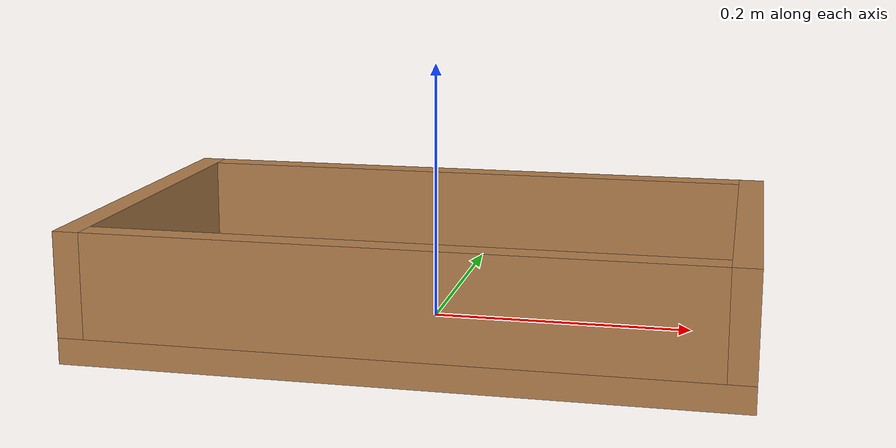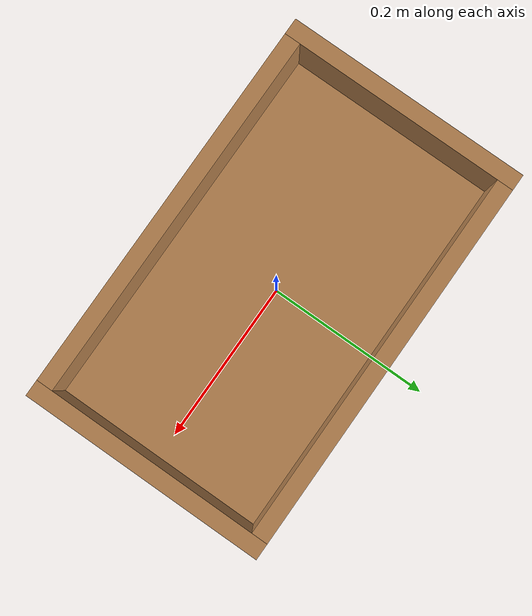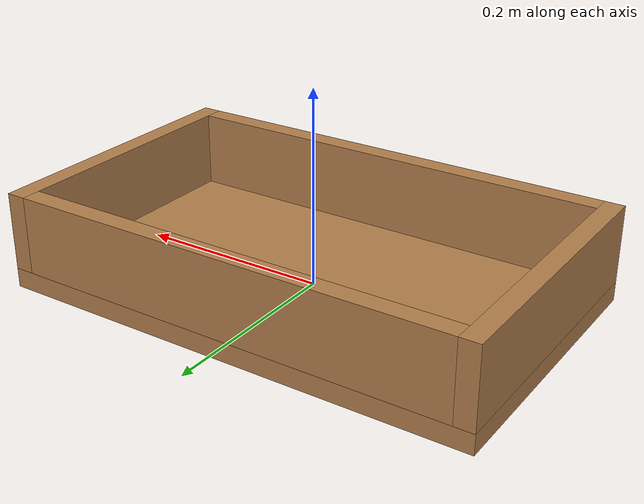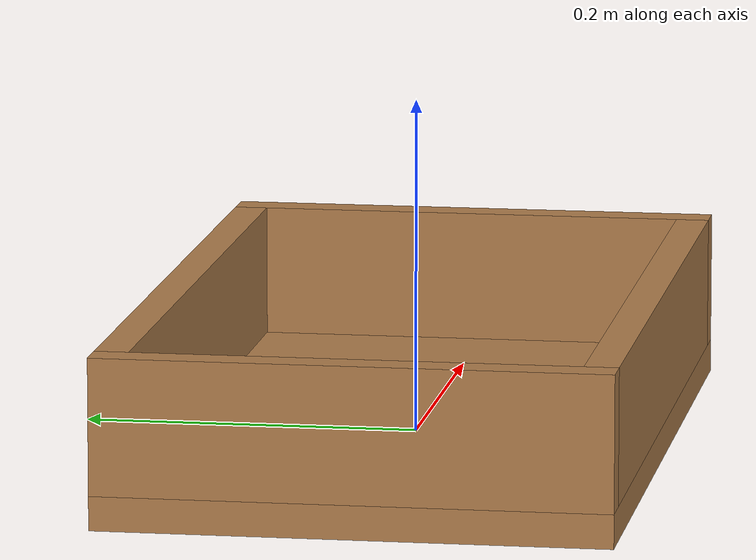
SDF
<?xml version="1.0" ?>

<sdf version="1.5">
  <model name="woodencase">

    <link name="case">
      <pose>0 0 0 0 0 0</pose>
      <inertial>
        <pose>0 0 0.02  0 0 0</pose>
        <mass>300</mass>
        <inertia>
          <ixx>100</ixx>
          <ixy>0.0</ixy>
          <ixz>0</ixz>
          <iyy>100</iyy>
          <iyz>0.0</iyz>
          <izz>100</izz>
        </inertia>
      </inertial>

      <collision name='case_bottom'>
        <pose>0 0 0  0 0 0</pose>
        <geometry>
          <box>
            <size>0.5 0.3 0.02</size>
          </box>
        </geometry>
        <surface>
          <contact>
            <poissons_ratio>0.347</poissons_ratio>
            <elastic_modulus>8.8e+09</elastic_modulus>
            <ode>
              <kp>100000</kp>
              <kd>100</kd>
              <max_vel>100.0</max_vel>
              <min_depth>0.001</min_depth>
            </ode>
          </contact>
          <friction>
            <torsional>
              <coefficient>1.0</coefficient>
              <use_patch_radius>0</use_patch_radius>
              <surface_radius>0.01</surface_radius>
            </torsional>
          </friction>
        </surface>
      </collision>

      <visual name='case_bottom'>
        <pose>0 0 0  0 0 0</pose>
        <geometry>
          <box>
            <size>0.5 0.3 0.02</size>
          </box>
        </geometry>
        <material>
          <script>
            <uri>file://media/materials/scripts/gazebo.material</uri>
            <name>Gazebo/Wood</name>
          </script>
        </material>
      </visual>

      <collision name='case_left'>
        <pose>-0.24 0 0.05  0 0 0</pose>
        <geometry>
          <box>
            <size>0.02 0.3 0.08</size>
          </box>
        </geometry>
        <surface>
          <contact>
            <poissons_ratio>0.347</poissons_ratio>
            <elastic_modulus>8.8e+09</elastic_modulus>
            <ode>
              <kp>100000</kp>
              <kd>100</kd>
              <max_vel>100.0</max_vel>
              <min_depth>0.001</min_depth>
            </ode>
          </contact>
          <friction>
            <torsional>
              <coefficient>1.0</coefficient>
              <use_patch_radius>0</use_patch_radius>
              <surface_radius>0.01</surface_radius>
            </torsional>
          </friction>
        </surface>
      </collision>

      <visual name='case_left'>
        <pose>-0.24 0 0.05  0 0 0</pose>
        <geometry>
          <box>
            <size>0.02 0.3 0.08</size>
          </box>
        </geometry>
        <material>
          <script>
            <uri>file://media/materials/scripts/gazebo.material</uri>
            <name>Gazebo/Wood</name>
          </script>
        </material>
      </visual>

      <collision name='case_right'>
        <pose>0.24 0 0.05  0 0 0</pose>
        <geometry>
          <box>
            <size>0.02 0.3 0.08</size>
          </box>
        </geometry>
        <surface>
          <contact>
            <poissons_ratio>0.347</poissons_ratio>
            <elastic_modulus>8.8e+09</elastic_modulus>
            <ode>
              <kp>100000</kp>
              <kd>100</kd>
              <max_vel>100.0</max_vel>
              <min_depth>0.001</min_depth>
            </ode>
          </contact>
          <friction>
            <torsional>
              <coefficient>1.0</coefficient>
              <use_patch_radius>0</use_patch_radius>
              <surface_radius>0.01</surface_radius>
            </torsional>
          </friction>
        </surface>
      </collision>

      <visual name='case_right'>
        <pose>0.24 0 0.05  0 0 0</pose>
        <geometry>
          <box>
            <size>0.02 0.3 0.08</size>
          </box>
        </geometry>
        <material>
          <script>
            <uri>file://media/materials/scripts/gazebo.material</uri>
            <name>Gazebo/Wood</name>
          </script>
        </material>
      </visual>

      <collision name='case_front'>
        <pose>0 -0.14 0.05  0 0 0</pose>
        <geometry>
          <box>
            <size>0.46 0.02 0.08</size>
          </box>
        </geometry>
        <surface>
          <contact>
            <poissons_ratio>0.347</poissons_ratio>
            <elastic_modulus>8.8e+09</elastic_modulus>
            <ode>
              <kp>100000</kp>
              <kd>100</kd>
              <max_vel>100.0</max_vel>
              <min_depth>0.001</min_depth>
            </ode>
          </contact>
          <friction>
            <torsional>
              <coefficient>1.0</coefficient>
              <use_patch_radius>0</use_patch_radius>
              <surface_radius>0.01</surface_radius>
            </torsional>
          </friction>
        </surface>
      </collision>

      <visual name='case_front'>
        <pose>0 -0.14 0.05  0 0 0</pose>
        <geometry>
          <box>
            <size>0.46 0.02 0.08</size>
          </box>
        </geometry>
        <material>
          <script>
            <uri>file://media/materials/scripts/gazebo.material</uri>
            <name>Gazebo/Wood</name>
          </script>
        </material>
      </visual>

      <collision name='case_back'>
        <pose>00 0.14 0.05  0 0 0</pose>
        <geometry>
          <box>
            <size>0.46 0.02 0.085</size>
          </box>
        </geometry>
        <surface>
          <contact>
            <poissons_ratio>0.347</poissons_ratio>
            <elastic_modulus>8.8e+09</elastic_modulus>
            <ode>
              <kp>100000</kp>
              <kd>100</kd>
              <max_vel>100.0</max_vel>
              <min_depth>0.001</min_depth>
            </ode>
          </contact>
          <friction>
            <torsional>
              <coefficient>1.0</coefficient>
              <use_patch_radius>0</use_patch_radius>
              <surface_radius>0.01</surface_radius>
            </torsional>
          </friction>
        </surface>
      </collision>

      <visual name='case_back'>
        <pose>0 0.14 0.05  0 0 0</pose>
        <geometry>
          <box>
            <size>0.46 0.02 0.08</size>
          </box>
        </geometry>
        <material>
          <script>
            <uri>file://media/materials/scripts/gazebo.material</uri>
            <name>Gazebo/Wood</name>
          </script>
        </material>
      </visual>

    </link>

  </model>
</sdf>
